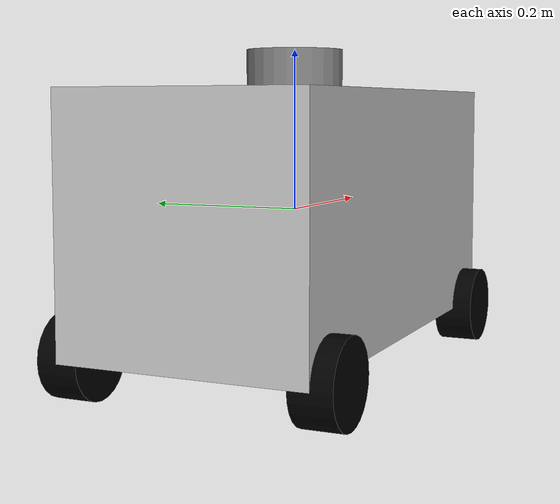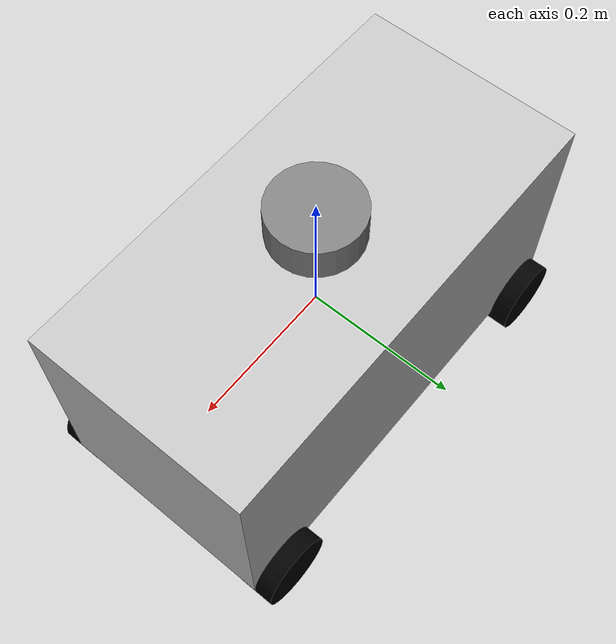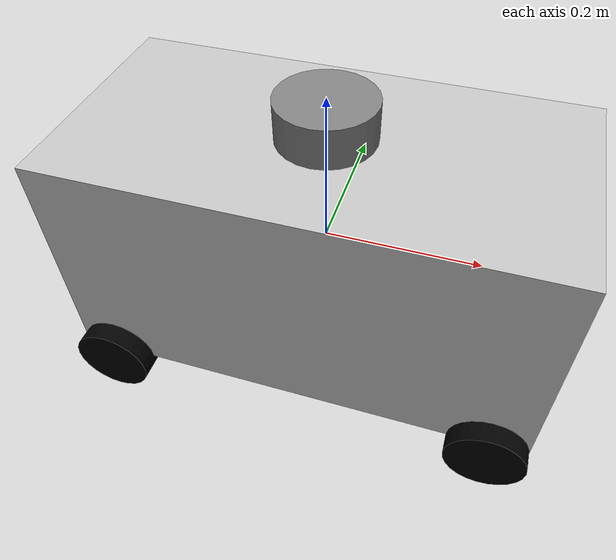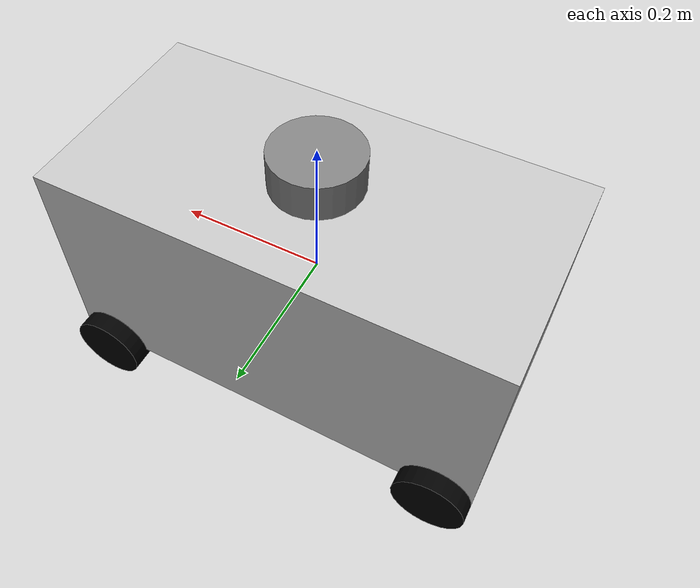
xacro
<?xml version='1.0'?>
<robot name="slambot" xmlns:xacro="http://www.ros.org/wiki/xacro">

  <xacro:include filename="$(find slambot_gazebo)/urdf/slambot.gazebo" />

  <!-- Base -->
  <link name="base_link">
    <visual>
      <geometry>
        <box size="0.6 0.3 0.3"/>
      </geometry>
      <material name="silver">
        <color rgba="0.75 0.75 0.75 1"/>
      </material>
    </visual>
    <collision>
      <geometry>
        <box size="0.6 0.3 0.3"/>
      </geometry>
    </collision>
    <inertial>
      <mass value="1.0"/>
      <inertia ixx="0.015" iyy="0.0375" izz="0.0375" ixy="0" ixz="0" iyz="0"/>
    </inertial>
  </link>

  <!-- Wheels -->
  <link name="front_left_wheel">
    <visual>
      <geometry>
        <cylinder length="0.05" radius="0.05"/>
      </geometry>
      <material name="black">
        <color rgba="0.0 0.0 0.0 1.0"/>
      </material>
    </visual>
    <collision>
      <geometry>
        <cylinder length="0.05" radius="0.05"/>
      </geometry>
    </collision>
    <inertial>
      <mass value="0.1"/>
      <inertia ixx="5.1458e-5" iyy="5.1458e-5" izz="6.125e-5" ixy="0" ixz="0" iyz="0"/>
    </inertial>
  </link>

  <joint name="front_left_wheel_joint" type="continuous">
    <axis xyz="0 0 1"/>
    <parent link="base_link"/>
    <child link="front_left_wheel"/>
    <origin rpy="-1.5708 0 0" xyz="0.25 0.15 -0.15"/>
  </joint>

  <link name="front_right_wheel">
    <visual>
      <geometry>
        <cylinder length="0.05" radius="0.05"/>
      </geometry>
      <material name="black">
        <color rgba="0.0 0.0 0.0 1.0"/>
      </material>
    </visual>
    <collision>
      <geometry>
        <cylinder length="0.05" radius="0.05"/>
      </geometry>
    </collision>
    <inertial>
      <mass value="0.1"/>
      <inertia ixx="5.1458e-5" iyy="5.1458e-5" izz="6.125e-5" ixy="0" ixz="0" iyz="0"/>
    </inertial>
  </link>

  <joint name="front_right_wheel_joint" type="continuous">
    <axis xyz="0 0 1"/>
    <parent link="base_link"/>
    <child link="front_right_wheel"/>
    <origin rpy="-1.5708 0 0" xyz="0.25 -0.15 -0.15"/>
  </joint>

  <link name="rear_left_wheel">
    <visual>
      <geometry>
        <cylinder length="0.05" radius="0.05"/>
      </geometry>
      <material name="black">
        <color rgba="0.0 0.0 0.0 1.0"/>
      </material>
    </visual>
    <collision>
      <geometry>
        <cylinder length="0.05" radius="0.05"/>
      </geometry>
    </collision>
    <inertial>
      <mass value="0.1"/>
      <inertia ixx="5.1458e-5" iyy="5.1458e-5" izz="6.125e-5" ixy="0" ixz="0" iyz="0"/>
    </inertial>
  </link>

  <joint name="rear_left_wheel_joint" type="continuous">
    <axis xyz="0 0 1"/>
    <parent link="base_link"/>
    <child link="rear_left_wheel"/>
    <origin rpy="-1.5708 0 0" xyz="-0.25 0.15 -0.15"/>
  </joint>

  <link name="rear_right_wheel">
    <visual>
      <geometry>
        <cylinder length="0.05" radius="0.05"/>
      </geometry>
      <material name="black">
        <color rgba="0.0 0.0 0.0 1.0"/>
      </material>
    </visual>
    <collision>
      <geometry>
        <cylinder length="0.05" radius="0.05"/>
      </geometry>
    </collision>
    <inertial>
      <mass value="0.1"/>
      <inertia ixx="5.1458e-5" iyy="5.1458e-5" izz="6.125e-5" ixy="0" ixz="0" iyz="0"/>
    </inertial>
  </link>

  <joint name="rear_right_wheel_joint" type="continuous">
    <axis xyz="0 0 1"/>
    <parent link="base_link"/>
    <child link="rear_right_wheel"/>
    <origin rpy="-1.5708 0 0" xyz="-0.25 -0.15 -0.15"/>
  </joint>

  <!-- Lidar -->
  <link name="lidar_link">
    <visual>
      <geometry>
        <cylinder length="0.05" radius="0.06"/>
      </geometry>
      <material name="grey">
        <color rgba="0.5 0.5 0.5 1"/>
      </material>
    </visual>
    <collision>
      <geometry>
        <cylinder length="0.05" radius="0.06"/>
      </geometry>
    </collision>
    <inertial>
      <mass value="0.05"/>
      <inertia ixx="0.00083" iyy="0.00083" izz="0.000167" ixy="0" ixz="0" iyz="0"/>
    </inertial>
  </link>

  <joint name="lidar_joint" type="fixed">
    <parent link="base_link"/>
    <child link="lidar_link"/>
    <origin xyz="0 0 0.175" rpy="0 0 0"/>
  </joint>

</robot>
